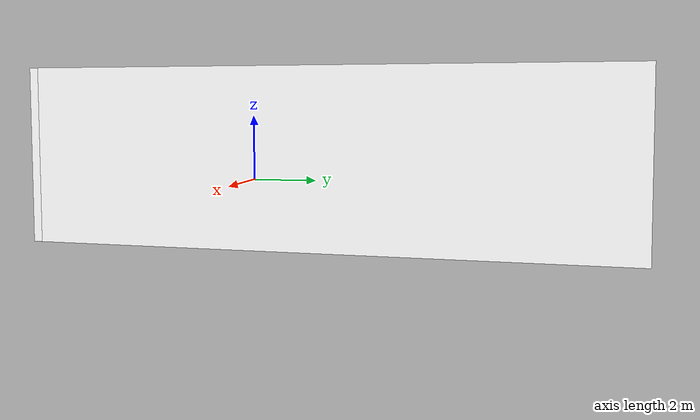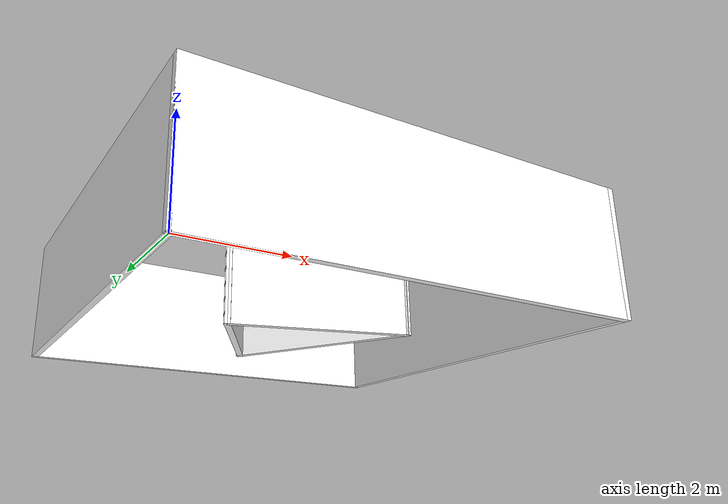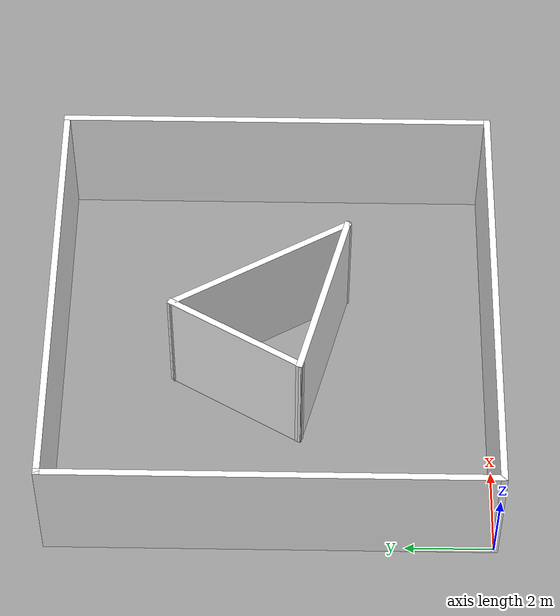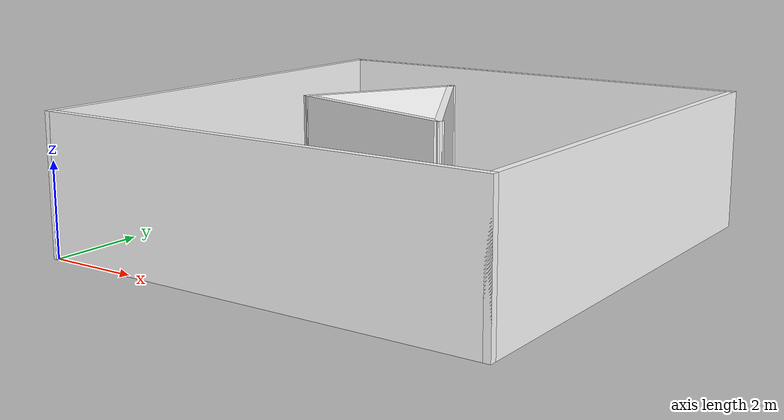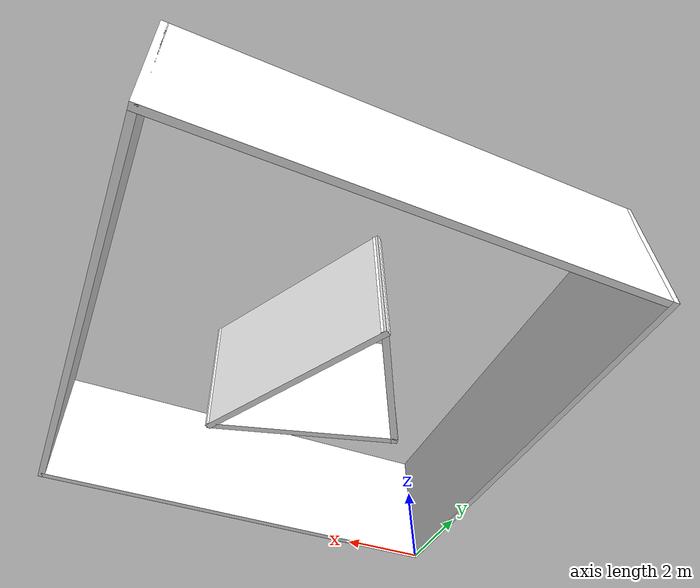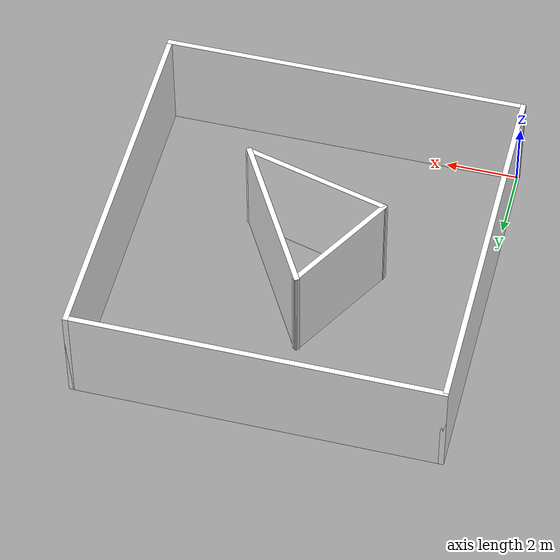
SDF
<?xml version='1.0'?>
<sdf version='1.7'>
  <model name='tri_env'>
    <pose>5 5 0 0 -0 0</pose>
    <link name='Wall_0'>
      <collision name='Wall_0_Collision'>
        <geometry>
          <box>
            <size>10.15 0.15 3</size>
          </box>
        </geometry>
        <pose>0 0 1.5 0 -0 0</pose>
      </collision>
      <visual name='Wall_0_Visual'>
        <pose>0 0 1.5 0 -0 0</pose>
        <geometry>
          <box>
            <size>10.15 0.15 3</size>
          </box>
        </geometry>
        <material>
          <script>
            <uri>model://tri_env/materials/scripts</uri>
            <uri>model://tri_env/materials/textures</uri>
            <name>wall1/Image </name>
          </script>
          <ambient>1 1 1 1</ambient>
        </material>
        <meta>
          <layer>0</layer>
        </meta>
      </visual>
      <pose>-0 -5 0 0 -0 0</pose>
    </link>
    <link name='Wall_10'>
      <collision name='Wall_10_Collision'>
        <geometry>
          <box>
            <size>4.72414 0.15 3</size>
          </box>
        </geometry>
        <pose>0 0 1.5 0 -0 0</pose>
      </collision>
      <visual name='Wall_10_Visual'>
        <pose>0 0 1.5 0 -0 0</pose>
        <geometry>
          <box>
            <size>4.72414 0.15 3</size>
          </box>
        </geometry>
        <material>
          <script>
            <uri>model://tri_env/materials/scripts</uri>
            <uri>model://tri_env/materials/textures</uri>
            <name>wall2/Image </name>
          </script>
          <ambient>1 1 1 1</ambient>
        </material>
        <meta>
          <layer>0</layer>
        </meta>
      </visual>
      <pose>0.7065 0.31 0 0 -0 2.09393</pose>
    </link>
    <link name='Wall_2'>
      <collision name='Wall_2_Collision'>
        <geometry>
          <box>
            <size>10.15 0.15 3</size>
          </box>
        </geometry>
        <pose>0 0 1.5 0 -0 0</pose>
      </collision>
      <visual name='Wall_2_Visual'>
        <pose>0 0 1.5 0 -0 0</pose>
        <geometry>
          <box>
            <size>10.15 0.15 3</size>
          </box>
        </geometry>
        <material>
          <script>
            <uri>model://tri_env/materials/scripts</uri>
            <uri>model://tri_env/materials/textures</uri>
            <name>wall3/Image </name>
          </script>
          <ambient>1 1 1 1</ambient>
        </material>
        <meta>
          <layer>0</layer>
        </meta>
      </visual>
      <pose>-0 5 0 0 -0 0</pose>
    </link>
    <link name='Wall_4'>
      <collision name='Wall_4_Collision'>
        <geometry>
          <box>
            <size>10.15 0.15 3</size>
          </box>
        </geometry>
        <pose>0 0 1.5 0 -0 0</pose>
      </collision>
      <visual name='Wall_4_Visual'>
        <pose>0 0 1.5 0 -0 0</pose>
        <geometry>
          <box>
            <size>10.15 0.15 3</size>
          </box>
        </geometry>
        <material>
          <script>
            <uri>model://tri_env/materials/scripts</uri>
            <uri>model://tri_env/materials/textures</uri>
            <name>wall8/Image </name>
          </script>
          <ambient>1 1 1 1</ambient>
        </material>
        <meta>
          <layer>0</layer>
        </meta>
      </visual>
      <pose>-5 -0 0 0 -0 1.5708</pose>
    </link>
    <link name='Wall_6'>
      <collision name='Wall_6_Collision'>
        <geometry>
          <box>
            <size>10.15 0.15 3</size>
          </box>
        </geometry>
        <pose>0 0 1.5 0 -0 0</pose>
      </collision>
      <visual name='Wall_6_Visual'>
        <pose>0 0 1.5 0 -0 0</pose>
        <geometry>
          <box>
            <size>10.15 0.15 3</size>
          </box>
        </geometry>
        <material>
          <script>
            <uri>model://tri_env/materials/scripts</uri>
            <uri>model://tri_env/materials/textures</uri>
            <name>wall5/Image </name>
          </script>
          <ambient>1 1 1 1</ambient>
        </material>
        <meta>
          <layer>0</layer>
        </meta>
      </visual>
      <pose>5 -0 0 0 -0 -1.5708</pose>
    </link>
    <link name='Wall_8'>
      <collision name='Wall_8_Collision'>
        <geometry>
          <box>
            <size>3.5 0.15 3</size>
          </box>
        </geometry>
        <pose>0 0 1.5 0 -0 0</pose>
      </collision>
      <visual name='Wall_8_Visual'>
        <pose>0 0 1.5 0 -0 0</pose>
        <geometry>
          <box>
            <size>3.5 0.15 3</size>
          </box>
        </geometry>
        <material>
          <script>
            <uri>model://tri_env/materials/scripts</uri>
            <uri>model://tri_env/materials/textures</uri>
            <name>wall6/Image </name>
          </script>
          <ambient>1 1 1 1</ambient>
        </material>
        <meta>
          <layer>0</layer>
        </meta>
      </visual>
      <pose>-1.2735 0.8405 0 0 -0 -2.09442</pose>
    </link>
    <link name='Wall_9'>
      <collision name='Wall_9_Collision'>
        <geometry>
          <box>
            <size>4.25 0.15 3</size>
          </box>
        </geometry>
        <pose>0 0 1.5 0 -0 0</pose>
      </collision>
      <visual name='Wall_9_Visual'>
        <pose>0 0 1.5 0 -0 0</pose>
        <geometry>
          <box>
            <size>4.25 0.15 3</size>
          </box>
        </geometry>
        <material>
          <script>
            <uri>model://tri_env/materials/scripts</uri>
            <uri>model://tri_env/materials/textures</uri>
            <name>wall7/Image </name>
          </script>
          <ambient>1 1 1 1</ambient>
        </material>
        <meta>
          <layer>0</layer>
        </meta>
      </visual>
      <pose>-0.131 -1.1405 0 0 -0 -0.261781</pose>
    </link>
    <static>1</static>
  </model>
</sdf>
